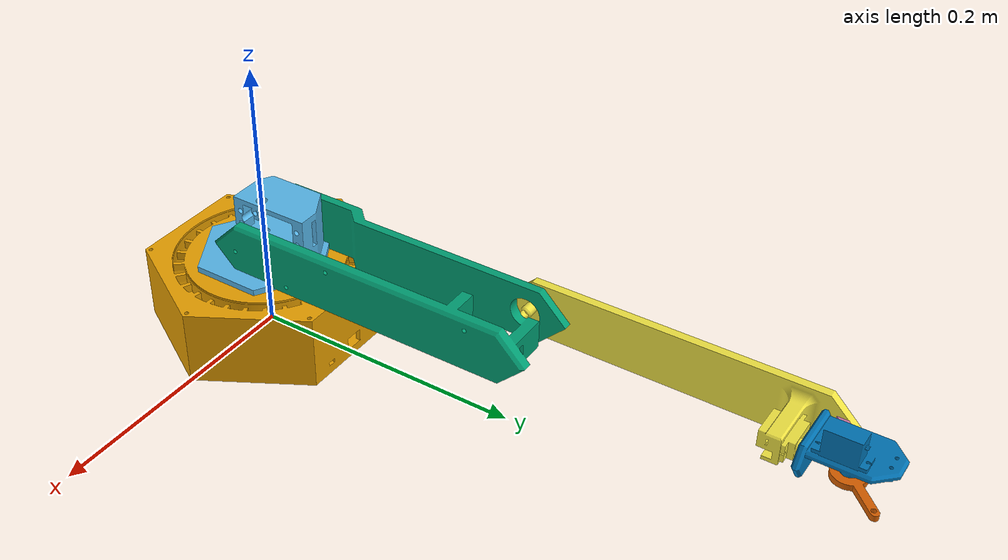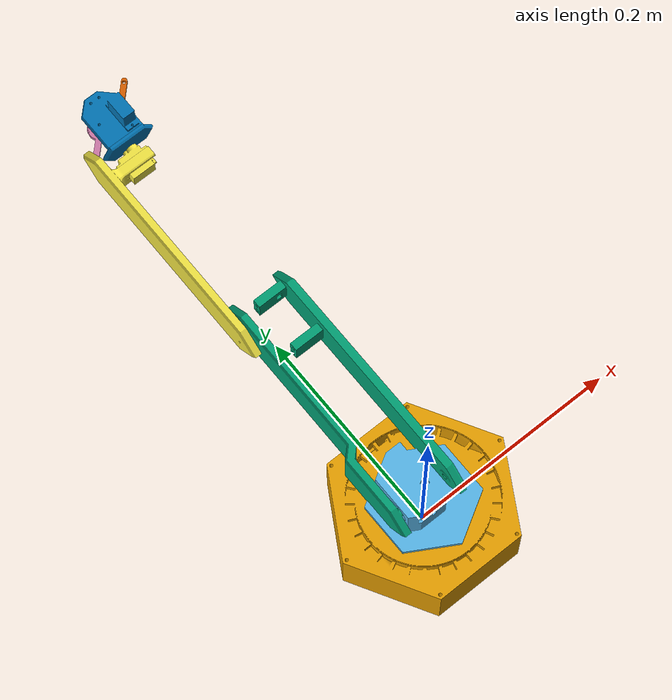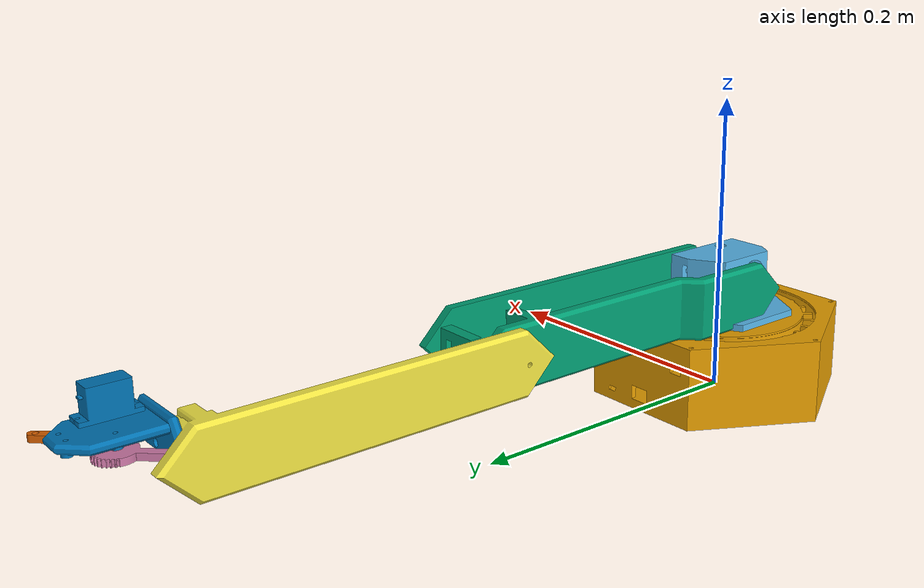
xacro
<?xml version="1.0"?>
<robot xmlns:xacro="http://www.ros.org/wiki/xacro" name="my_manipulator">

  <!-- base -->
  <link name="base_link">
    <visual>
      <geometry>
        <mesh filename="package://my_manipulator_description/meshes/base_link.dae"/>
      </geometry>
    </visual>
  </link>

  <!-- articulation1 -->
  <link name="articulation1">
    <visual>
      <geometry>
        <mesh filename="package://my_manipulator_description/meshes/articulation1.dae"/>
      </geometry>
    </visual>
  </link>

  <!-- joint: base -> link1 -->
  <joint name="joint1" type="revolute">
    <parent link="base_link"/>
    <child link="articulation1"/>

    <origin xyz="0 0 0.045" rpy="0 0 -1.57"/>

    <!-- 회전축 -->
    <axis xyz="0 0 1"/>

    <!-- 임시 limit -->
    <limit lower="0" upper="3.14" effort="1" velocity="1"/>
  </joint>

  <!-- link1 -->
   <link name ="link1">
    <visual>
      <geometry>
        <mesh filename="package://my_manipulator_description/meshes/link1.dae"/>
      </geometry>
    </visual>
  </link>

  <!-- joint: articulation1 -> link1 -->
  <joint name="joint2" type="revolute">
    <parent link="articulation1"/>
    <child link="link1"/>

    <origin xyz="0 0.026 0.03" rpy="0 -1.57 0"/>

    <!-- 회전축 -->
    <axis xyz="0 1 0"/>

    <!-- 임시 limit -->
    <limit lower="0" upper="3.14" effort="1" velocity="1"/>
  </joint>

  <!-- link2 -->
  <link name ="link2">
    <visual>
      <geometry>
        <mesh filename="package://my_manipulator_description/meshes/link2.dae"/>
      </geometry>
    </visual>
  </link>

  <!-- joint3: link1 -> link2 -->
  <joint name="joint3" type="revolute">
    <parent link="link1"/>
    <child link="link2"/>
    <origin xyz="0 -0.046 0.2" rpy="0 0 0"/>
    <!-- 회전축 -->
    <axis xyz="0 -1 0"/>
    <!-- 임시 limit -->
    <limit lower="0" upper="3.14" effort="1" velocity="1"/>
  </joint>

  <!-- gripper base -->
  <link name ="gripper_base">
    <visual>
      <geometry>
        <mesh filename="package://my_manipulator_description/meshes/gripper_base.dae"/>
      </geometry>
    </visual>
  </link>

  <!-- joint4: link2 -> gripper base -->
  <joint name="joint4" type="revolute">
    <parent link="link2"/>
    <child link="gripper_base"/>
    <origin xyz="0 0.021 0.199" rpy="0 0 0"/>
    <!-- 회전축 -->
    <axis xyz="0 0 1"/>
    <!-- 임시 limit -->
    <limit lower="0" upper="3.14" effort="1" velocity="1"/>
  </joint>

  <!-- gripper left 1 -->
  <link name ="gripper_left_1">
    <visual>
      <geometry>
        <mesh filename="package://my_manipulator_description/meshes/gripper_left_1.dae"/>
      </geometry>
    </visual>
  </link>

  <joint name="gripper_left_joint_1" type="revolute">
    <parent link="gripper_base"/>
    <child link="gripper_left_1"/>
    <origin xyz="0.0051 0.0105 0.029" rpy="1.57 0 0"/>
    <!-- 이동축 -->
    <axis xyz="-1 0 0"/>
    <!-- 임시 limit -->
    <limit lower="1.57" upper="3.14" effort="1" velocity="0.02"/>
  </joint>

  <!-- gripper right 1 -->
  <link name ="gripper_right_1">
    <visual>
      <geometry>
        <mesh filename="package://my_manipulator_description/meshes/gripper_right_1.dae"/>
      </geometry>
    </visual>
  </link>

  <joint name="gripper_right_joint_1" type="revolute">
    <parent link="gripper_base"/>
    <child link="gripper_right_1"/>
    <origin xyz="0.0051 -0.0105 0.029" rpy="-1.57 0 0"/>
    <!-- 이동축 -->
    <axis xyz="-1 0 0"/>
    <!-- 임시 limit -->
    <limit lower="1.57" upper="3.14" effort="1" velocity="0.02"/>
    <!-- 왼쪽 그리퍼와 반대 방향으로 연동 -->
    <mimic joint="gripper_left_joint_1" multiplier="-1" offset="0"/>
  </joint>

</robot>
